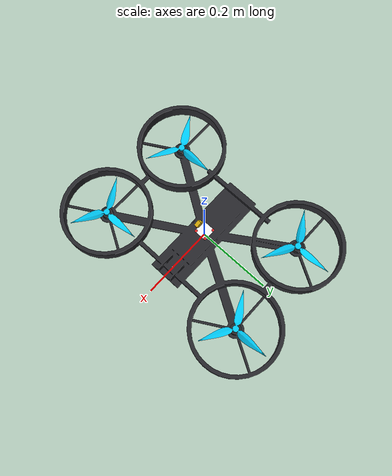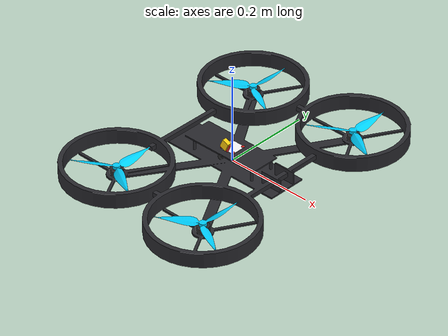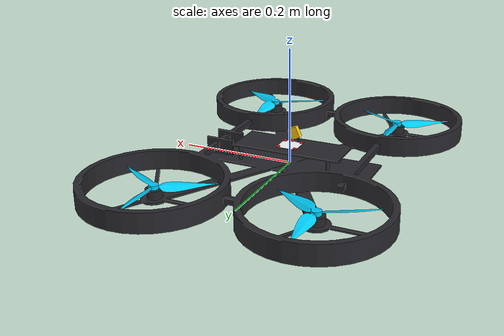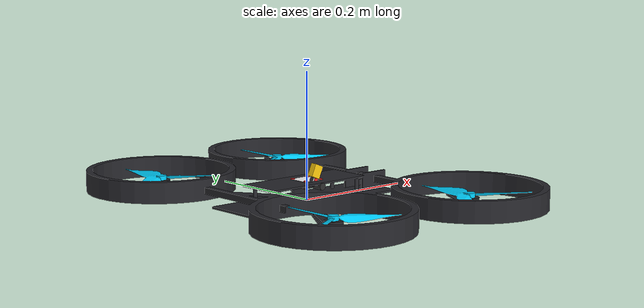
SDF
<?xml version='1.0'?>
<sdf version='1.9'>
  <model name='iris_with_standoffs'>
    <pose>0 0 0 0 0 0</pose>
    <link name='base_link'>
      <velocity_decay>
        <linear>0.0</linear>
        <angular>0.0</angular>
      </velocity_decay>
      <inertial>
        <pose>0 0 0 0 0 0</pose>
        <mass>1.5</mass>
        <inertia>
          <ixx>0.008</ixx>
          <ixy>0</ixy>
          <ixz>0</ixz>
          <iyy>0.015</iyy>
          <iyz>0</iyz>
          <izz>0.017</izz>
        </inertia>
      </inertial>
      <collision name='base_collision'>
        <pose>0 0 0 0 0 0</pose>
        <geometry>
          <mesh>
            <uri>model://iris_with_standoffs/meshes/iris_collision.stl</uri>
          </mesh>
        </geometry>
        <surface>
          <contact>
            <ode>
              <max_vel>100.0</max_vel>
              <min_depth>0.001</min_depth>
            </ode>
          </contact>
          <friction>
            <ode>
              <mu>100000.0</mu>
              <mu2>100000.0</mu2>
            </ode>
          </friction>
        </surface>
      </collision>
      <collision name='cinewhoop_bottom_collision'>
        <pose>0 0 -0.01 0 0 0</pose>
        <geometry>
          <box>
            <size>0.30 0.30 0.015</size>
          </box>
        </geometry>
        <surface>
          <contact>
            <ode>
              <max_vel>100.0</max_vel>
              <min_depth>0.001</min_depth>
            </ode>
          </contact>
          <friction>
            <ode>
              <mu>100.0</mu>
              <mu2>100.0</mu2>
            </ode>
          </friction>
        </surface>
      </collision>

      <!-- 1. Carbon Fiber Cinewhoop Ducted Frame -->
      <visual name='base_visual'>
        <geometry>
          <mesh>
            <uri>model://iris_with_standoffs/meshes/cinewhoop_frame.dae</uri>
          </mesh>
        </geometry>
        <material>
          <ambient>0.12 0.12 0.14 1.0</ambient>
          <diffuse>0.16 0.16 0.18 1.0</diffuse>
          <specular>0.4 0.4 0.4 1.0</specular>
          <pbr>
            <metal>
              <albedo_map>model://iris_with_standoffs/materials/textures/carbon_fiber_texture.png</albedo_map>
              <metalness>0.2</metalness>
              <roughness>0.5</roughness>
            </metal>
          </pbr>
        </material>
      </visual>

      <!-- 2. Flight Controller Stack: Matek H743-SLIM V3 Top Board -->
      <visual name='matek_h743_fc_visual'>
        <pose>0 0 0.031 0 0 0</pose>
        <geometry>
          <box>
            <size>0.036 0.036 0.003</size>
          </box>
        </geometry>
        <material>
          <diffuse>1.0 1.0 1.0 1.0</diffuse>
          <pbr>
            <metal>
              <albedo_map>model://iris_with_standoffs/materials/textures/matek_pcb_texture.png</albedo_map>
              <roughness>0.25</roughness>
              <metalness>0.20</metalness>
            </metal>
          </pbr>
        </material>
      </visual>

      <!-- 3. Flight Controller Stack: 4-in-1 ESC Bottom Board -->
      <visual name='matek_4in1_esc_visual'>
        <pose>0 0 0.024 0 0 0</pose>
        <geometry>
          <box>
            <size>0.040 0.040 0.003</size>
          </box>
        </geometry>
        <material>
          <ambient>0.08 0.08 0.09 1.0</ambient>
          <diffuse>0.12 0.12 0.13 1.0</diffuse>
          <pbr>
            <metal>
              <roughness>0.7</roughness>
              <metalness>0.1</metalness>
            </metal>
          </pbr>
        </material>
      </visual>

      <!-- 4. Stack Corners: 4 Red Silicone Anti-Vibration Grommets -->
      <visual name='stack_damper_fl'>
        <pose>0.015 0.015 0.0275 0 0 0</pose>
        <geometry>
          <cylinder>
            <radius>0.0035</radius>
            <length>0.012</length>
          </cylinder>
        </geometry>
        <material>
          <ambient>0.80 0.10 0.10 1.0</ambient>
          <diffuse>0.92 0.15 0.15 1.0</diffuse>
          <pbr>
            <metal>
              <roughness>0.6</roughness>
              <metalness>0.05</metalness>
            </metal>
          </pbr>
        </material>
      </visual>
      <visual name='stack_damper_fr'>
        <pose>0.015 -0.015 0.0275 0 0 0</pose>
        <geometry>
          <cylinder>
            <radius>0.0035</radius>
            <length>0.012</length>
          </cylinder>
        </geometry>
        <material>
          <ambient>0.80 0.10 0.10 1.0</ambient>
          <diffuse>0.92 0.15 0.15 1.0</diffuse>
          <pbr>
            <metal>
              <roughness>0.6</roughness>
              <metalness>0.05</metalness>
            </metal>
          </pbr>
        </material>
      </visual>
      <visual name='stack_damper_rl'>
        <pose>-0.015 0.015 0.0275 0 0 0</pose>
        <geometry>
          <cylinder>
            <radius>0.0035</radius>
            <length>0.012</length>
          </cylinder>
        </geometry>
        <material>
          <ambient>0.80 0.10 0.10 1.0</ambient>
          <diffuse>0.92 0.15 0.15 1.0</diffuse>
          <pbr>
            <metal>
              <roughness>0.6</roughness>
              <metalness>0.05</metalness>
            </metal>
          </pbr>
        </material>
      </visual>
      <visual name='stack_damper_rr'>
        <pose>-0.015 -0.015 0.0275 0 0 0</pose>
        <geometry>
          <cylinder>
            <radius>0.0035</radius>
            <length>0.012</length>
          </cylinder>
        </geometry>
        <material>
          <ambient>0.80 0.10 0.10 1.0</ambient>
          <diffuse>0.92 0.15 0.15 1.0</diffuse>
          <pbr>
            <metal>
              <roughness>0.6</roughness>
              <metalness>0.05</metalness>
            </metal>
          </pbr>
        </material>
      </visual>

      <!-- 5. 4 Brushless Motors (Black Anodized Stators & Bells) -->
      <visual name='motor_0_visual'>
        <pose>0.13 -0.22 0.012 0 0 0</pose>
        <geometry>
          <cylinder>
            <radius>0.014</radius>
            <length>0.016</length>
          </cylinder>
        </geometry>
        <material>
          <ambient>0.10 0.10 0.10 1.0</ambient>
          <diffuse>0.15 0.15 0.16 1.0</diffuse>
          <specular>0.6 0.6 0.6 1.0</specular>
          <pbr>
            <metal>
              <roughness>0.35</roughness>
              <metalness>0.85</metalness>
            </metal>
          </pbr>
        </material>
      </visual>
      <visual name='motor_1_visual'>
        <pose>-0.13 0.20 0.012 0 0 0</pose>
        <geometry>
          <cylinder>
            <radius>0.014</radius>
            <length>0.016</length>
          </cylinder>
        </geometry>
        <material>
          <ambient>0.10 0.10 0.10 1.0</ambient>
          <diffuse>0.15 0.15 0.16 1.0</diffuse>
          <specular>0.6 0.6 0.6 1.0</specular>
          <pbr>
            <metal>
              <roughness>0.35</roughness>
              <metalness>0.85</metalness>
            </metal>
          </pbr>
        </material>
      </visual>
      <visual name='motor_2_visual'>
        <pose>0.13 0.22 0.012 0 0 0</pose>
        <geometry>
          <cylinder>
            <radius>0.014</radius>
            <length>0.016</length>
          </cylinder>
        </geometry>
        <material>
          <ambient>0.10 0.10 0.10 1.0</ambient>
          <diffuse>0.15 0.15 0.16 1.0</diffuse>
          <specular>0.6 0.6 0.6 1.0</specular>
          <pbr>
            <metal>
              <roughness>0.35</roughness>
              <metalness>0.85</metalness>
            </metal>
          </pbr>
        </material>
      </visual>
      <visual name='motor_3_visual'>
        <pose>-0.13 -0.20 0.012 0 0 0</pose>
        <geometry>
          <cylinder>
            <radius>0.014</radius>
            <length>0.016</length>
          </cylinder>
        </geometry>
        <material>
          <ambient>0.10 0.10 0.10 1.0</ambient>
          <diffuse>0.15 0.15 0.16 1.0</diffuse>
          <specular>0.6 0.6 0.6 1.0</specular>
          <pbr>
            <metal>
              <roughness>0.35</roughness>
              <metalness>0.85</metalness>
            </metal>
          </pbr>
        </material>
      </visual>

      <!-- 6. Battery Lead Wires & Industrial Yellow XT60 Connector -->
      <visual name='battery_wire_red'>
        <pose>0.005 -0.018 0.038 0 0.40 0</pose>
        <geometry>
          <cylinder>
            <radius>0.0025</radius>
            <length>0.024</length>
          </cylinder>
        </geometry>
        <material>
          <ambient>0.85 0.12 0.12 1.0</ambient>
          <diffuse>0.90 0.15 0.15 1.0</diffuse>
          <pbr>
            <metal>
              <roughness>0.5</roughness>
              <metalness>0.05</metalness>
            </metal>
          </pbr>
        </material>
      </visual>
      <visual name='battery_wire_black'>
        <pose>-0.005 -0.018 0.038 0 0.40 0</pose>
        <geometry>
          <cylinder>
            <radius>0.0025</radius>
            <length>0.024</length>
          </cylinder>
        </geometry>
        <material>
          <ambient>0.08 0.08 0.08 1.0</ambient>
          <diffuse>0.12 0.12 0.12 1.0</diffuse>
          <pbr>
            <metal>
              <roughness>0.5</roughness>
              <metalness>0.05</metalness>
            </metal>
          </pbr>
        </material>
      </visual>
      <visual name='xt60_connector'>
        <pose>0.00 -0.020 0.048 0 0.40 0</pose>
        <geometry>
          <box>
            <size>0.016 0.010 0.020</size>
          </box>
        </geometry>
        <material>
          <ambient>0.92 0.72 0.00 1.0</ambient>
          <diffuse>1.00 0.80 0.05 1.0</diffuse>
          <pbr>
            <metal>
              <roughness>0.3</roughness>
              <metalness>0.1</metalness>
            </metal>
          </pbr>
        </material>
      </visual>

      <!-- 7. Filter Capacitor (Black cylinder with gold band) -->
      <visual name='filter_capacitor'>
        <pose>0.00 -0.028 0.026 1.5708 0 0</pose>
        <geometry>
          <cylinder>
            <radius>0.0055</radius>
            <length>0.018</length>
          </cylinder>
        </geometry>
        <material>
          <ambient>0.10 0.10 0.10 1.0</ambient>
          <diffuse>0.18 0.18 0.18 1.0</diffuse>
          <pbr>
            <metal>
              <roughness>0.3</roughness>
              <metalness>0.7</metalness>
            </metal>
          </pbr>
        </material>
      </visual>

      <!-- 8. Knurled Aluminum Frame Standoffs -->
      <visual name='standoff_fl'>
        <pose>0.08 0.028 0.016 0 0 0</pose>
        <geometry>
          <cylinder>
            <radius>0.003</radius>
            <length>0.026</length>
          </cylinder>
        </geometry>
        <material>
          <ambient>0.12 0.12 0.12 1.0</ambient>
          <diffuse>0.18 0.18 0.20 1.0</diffuse>
          <pbr>
            <metal>
              <roughness>0.3</roughness>
              <metalness>0.8</metalness>
            </metal>
          </pbr>
        </material>
      </visual>
      <visual name='standoff_fr'>
        <pose>0.08 -0.028 0.016 0 0 0</pose>
        <geometry>
          <cylinder>
            <radius>0.003</radius>
            <length>0.026</length>
          </cylinder>
        </geometry>
        <material>
          <ambient>0.12 0.12 0.12 1.0</ambient>
          <diffuse>0.18 0.18 0.20 1.0</diffuse>
          <pbr>
            <metal>
              <roughness>0.3</roughness>
              <metalness>0.8</metalness>
            </metal>
          </pbr>
        </material>
      </visual>
      <visual name='standoff_rl'>
        <pose>-0.08 0.028 0.016 0 0 0</pose>
        <geometry>
          <cylinder>
            <radius>0.003</radius>
            <length>0.026</length>
          </cylinder>
        </geometry>
        <material>
          <ambient>0.12 0.12 0.12 1.0</ambient>
          <diffuse>0.18 0.18 0.20 1.0</diffuse>
          <pbr>
            <metal>
              <roughness>0.3</roughness>
              <metalness>0.8</metalness>
            </metal>
          </pbr>
        </material>
      </visual>
      <visual name='standoff_rr'>
        <pose>-0.08 -0.028 0.016 0 0 0</pose>
        <geometry>
          <cylinder>
            <radius>0.003</radius>
            <length>0.026</length>
          </cylinder>
        </geometry>
        <material>
          <ambient>0.12 0.12 0.12 1.0</ambient>
          <diffuse>0.18 0.18 0.20 1.0</diffuse>
          <pbr>
            <metal>
              <roughness>0.3</roughness>
              <metalness>0.8</metalness>
            </metal>
          </pbr>
        </material>
      </visual>
    </link>

    <link name='imu_link'>
      <inertial>
        <pose>0 0 0 0 0 0</pose>
        <mass>0.15</mass>
        <inertia>
          <ixx>0.00001</ixx>
          <ixy>0</ixy>
          <ixz>0</ixz>
          <iyy>0.00002</iyy>
          <iyz>0</iyz>
          <izz>0.00002</izz>
        </inertia>
      </inertial>
      <sensor name="imu_sensor" type="imu">
        <gz_frame_id>imu_link</gz_frame_id>
        <pose degrees="true">0 0 0 180 0 0</pose>
        <always_on>1</always_on>
        <update_rate>1000.0</update_rate>
      </sensor>
    </link>
    <joint name='imu_joint' type='revolute'>
      <child>imu_link</child>
      <parent>base_link</parent>
      <axis>
        <xyz>0 0 1</xyz>
        <limit>
          <lower>0</lower>
          <upper>0</upper>
          <effort>0</effort>
          <velocity>0</velocity>
        </limit>
        <dynamics>
          <damping>1.0</damping>
        </dynamics>
      </axis>
    </joint>

    <!-- Rotor 0: Front Right, CCW (Gemfan Cyan Tri-Blade) -->
    <link name='rotor_0'>
      <pose>0.13 -0.22 0.023 0 0 0</pose>
      <inertial>
        <pose>0 0 0 0 0 0</pose>
        <mass>0.025</mass>
        <inertia>
          <ixx>9.75e-06</ixx>
          <ixy>0</ixy>
          <ixz>0</ixz>
          <iyy>0.000166704</iyy>
          <iyz>0</iyz>
          <izz>0.000167604</izz>
        </inertia>
      </inertial>
      <collision name='collision'>
        <pose>0 0 0 0 0 0</pose>
        <geometry>
          <cylinder>
            <length>0.005</length>
            <radius>0.1</radius>
          </cylinder>
        </geometry>
      </collision>
      <visual name='visual'>
        <pose>0 0 0 0 0 0</pose>
        <geometry>
          <mesh>
            <scale>1 1 1</scale>
            <uri>model://iris_with_standoffs/meshes/cinewhoop_prop_ccw.dae</uri>
          </mesh>
        </geometry>
        <material>
          <ambient>0.00 0.65 0.95 1.0</ambient>
          <diffuse>0.00 0.82 1.00 1.0</diffuse>
          <specular>0.85 0.85 0.85 1.0</specular>
          <pbr>
            <metal>
              <metalness>0.05</metalness>
              <roughness>0.15</roughness>
            </metal>
          </pbr>
        </material>
      </visual>
    </link>
    <joint name='rotor_0_joint' type='revolute'>
      <child>rotor_0</child>
      <parent>base_link</parent>
      <axis>
        <xyz>0 0 1</xyz>
        <limit>
          <lower>-1e+16</lower>
          <upper>1e+16</upper>
        </limit>
        <dynamics>
          <damping>0.004</damping>
        </dynamics>
      </axis>
    </joint>

    <!-- Rotor 1: Rear Left, CCW (Gemfan Cyan Tri-Blade) -->
    <link name='rotor_1'>
      <pose>-0.13 0.2 0.023 0 0 0</pose>
      <inertial>
        <pose>0 0 0 0 0 0</pose>
        <mass>0.025</mass>
        <inertia>
          <ixx>9.75e-06</ixx>
          <ixy>0</ixy>
          <ixz>0</ixz>
          <iyy>0.000166704</iyy>
          <iyz>0</iyz>
          <izz>0.000167604</izz>
        </inertia>
      </inertial>
      <collision name='collision'>
        <pose>0 0 0 0 0 0</pose>
        <geometry>
          <cylinder>
            <length>0.005</length>
            <radius>0.1</radius>
          </cylinder>
        </geometry>
      </collision>
      <visual name='visual'>
        <pose>0 0 0 0 0 0</pose>
        <geometry>
          <mesh>
            <scale>1 1 1</scale>
            <uri>model://iris_with_standoffs/meshes/cinewhoop_prop_ccw.dae</uri>
          </mesh>
        </geometry>
        <material>
          <ambient>0.00 0.65 0.95 1.0</ambient>
          <diffuse>0.00 0.82 1.00 1.0</diffuse>
          <specular>0.85 0.85 0.85 1.0</specular>
          <pbr>
            <metal>
              <metalness>0.05</metalness>
              <roughness>0.15</roughness>
            </metal>
          </pbr>
        </material>
      </visual>
    </link>
    <joint name='rotor_1_joint' type='revolute'>
      <child>rotor_1</child>
      <parent>base_link</parent>
      <axis>
        <xyz>0 0 1</xyz>
        <limit>
          <lower>-1e+16</lower>
          <upper>1e+16</upper>
        </limit>
        <dynamics>
          <damping>0.004</damping>
        </dynamics>
      </axis>
    </joint>

    <!-- Rotor 2: Front Left, CW (Gemfan Cyan Tri-Blade) -->
    <link name='rotor_2'>
      <pose>0.13 0.22 0.023 0 0 0</pose>
      <inertial>
        <pose>0 0 0 0 0 0</pose>
        <mass>0.025</mass>
        <inertia>
          <ixx>9.75e-06</ixx>
          <ixy>0</ixy>
          <ixz>0</ixz>
          <iyy>0.000166704</iyy>
          <iyz>0</iyz>
          <izz>0.000167604</izz>
        </inertia>
      </inertial>
      <collision name='collision'>
        <pose>0 0 0 0 0 0</pose>
        <geometry>
          <cylinder>
            <length>0.005</length>
            <radius>0.1</radius>
          </cylinder>
        </geometry>
      </collision>
      <visual name='visual'>
        <pose>0 0 0 0 0 0</pose>
        <geometry>
          <mesh>
            <scale>1 1 1</scale>
            <uri>model://iris_with_standoffs/meshes/cinewhoop_prop_cw.dae</uri>
          </mesh>
        </geometry>
        <material>
          <ambient>0.00 0.65 0.95 1.0</ambient>
          <diffuse>0.00 0.82 1.00 1.0</diffuse>
          <specular>0.85 0.85 0.85 1.0</specular>
          <pbr>
            <metal>
              <metalness>0.05</metalness>
              <roughness>0.15</roughness>
            </metal>
          </pbr>
        </material>
      </visual>
    </link>
    <joint name='rotor_2_joint' type='revolute'>
      <child>rotor_2</child>
      <parent>base_link</parent>
      <axis>
        <xyz>0 0 1</xyz>
        <limit>
          <lower>-1e+16</lower>
          <upper>1e+16</upper>
        </limit>
        <dynamics>
          <damping>0.004</damping>
        </dynamics>
      </axis>
    </joint>

    <!-- Rotor 3: Rear Right, CW (Gemfan Cyan Tri-Blade) -->
    <link name='rotor_3'>
      <pose>-0.13 -0.2 0.023 0 0 0</pose>
      <inertial>
        <pose>0 0 0 0 0 0</pose>
        <mass>0.025</mass>
        <inertia>
          <ixx>9.75e-06</ixx>
          <ixy>0</ixy>
          <ixz>0</ixz>
          <iyy>0.000166704</iyy>
          <iyz>0</iyz>
          <izz>0.000167604</izz>
        </inertia>
      </inertial>
      <collision name='collision'>
        <pose>0 0 0 0 0 0</pose>
        <geometry>
          <cylinder>
            <length>0.005</length>
            <radius>0.1</radius>
          </cylinder>
        </geometry>
      </collision>
      <visual name='visual'>
        <pose>0 0 0 0 0 0</pose>
        <geometry>
          <mesh>
            <scale>1 1 1</scale>
            <uri>model://iris_with_standoffs/meshes/cinewhoop_prop_cw.dae</uri>
          </mesh>
        </geometry>
        <material>
          <ambient>0.00 0.65 0.95 1.0</ambient>
          <diffuse>0.00 0.82 1.00 1.0</diffuse>
          <specular>0.85 0.85 0.85 1.0</specular>
          <pbr>
            <metal>
              <metalness>0.05</metalness>
              <roughness>0.15</roughness>
            </metal>
          </pbr>
        </material>
      </visual>
    </link>
    <joint name='rotor_3_joint' type='revolute'>
      <child>rotor_3</child>
      <parent>base_link</parent>
      <axis>
        <xyz>0 0 1</xyz>
        <limit>
          <lower>-1e+16</lower>
          <upper>1e+16</upper>
        </limit>
        <dynamics>
          <damping>0.004</damping>
        </dynamics>
      </axis>
    </joint>
  </model>
</sdf>
